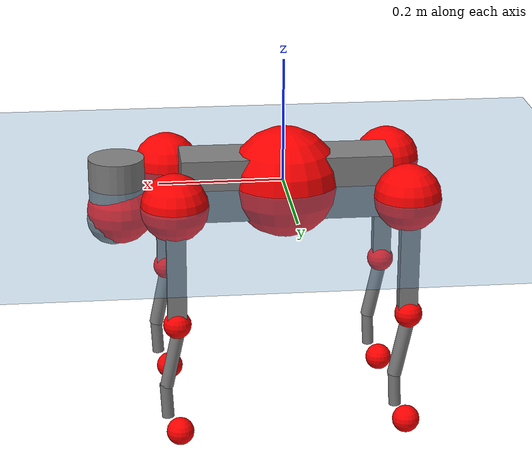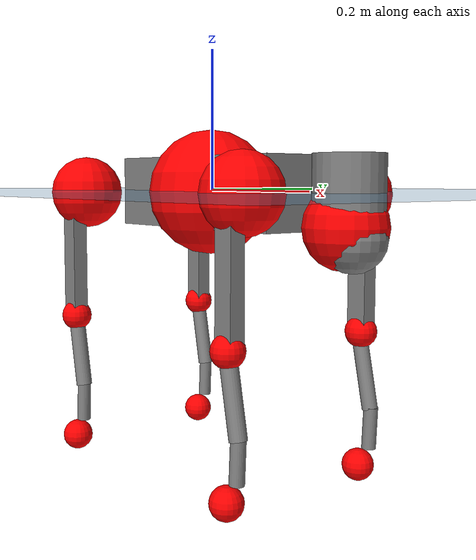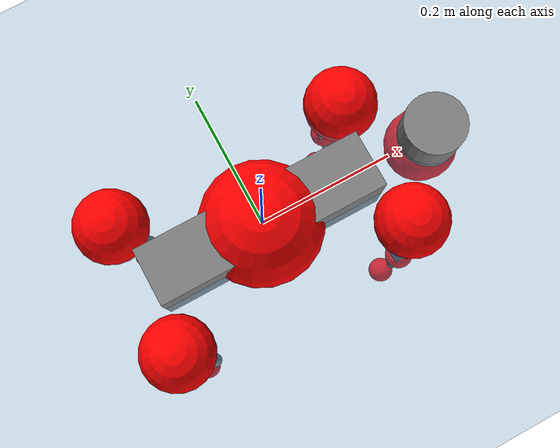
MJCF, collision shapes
<mujoco model="go2">
  <compiler angle="radian" assetdir="assets" balanceinertia="true" inertiafromgeom="false"/>

  <option timestep="0.005" density="1.2" viscosity="2e-05"/>

  <size nkey="1"/>

  <visual>
    <quality shadowsize="8192"/>
    <map shadowclip="0.5"/>
  </visual>

  <default>
    <default class="/">
      <geom contype="0" conaffinity="0" group="1" solref="-1000 -80"/>
      <site size="0.01 0.005 0.005" group="5"/>
      <general forcelimited="true" biastype="affine" gainprm="20" biasprm="0 -20 -0.5"/>
      <default class="go2">
        <joint armature="0.01" damping="0.01" frictionloss="0.2"/>
        <geom condim="1" margin="0.001"/>
        <default class="visual">
          <geom type="mesh" group="2"/>
        </default>
        <default class="collision">
          <geom group="3"/>
          <default class="foot">
            <geom size="0.022 0 0" condim="6" priority="1" friction="0.8 0.02 0.01" solimp="0.015 1 0.022"/>
          </default>
        </default>
        <default class="reward_collision_sphere">
          <geom group="5" rgba="1 0 0 1"/>
        </default>
      </default>
    </default>
  </default>

  <asset>
    <texture type="skybox" colorspace="auto" name="//unnamed_texture_0" builtin="gradient" rgb1="0.95 0.95 0.95" rgb2="0.95 0.95 0.95" width="100" height="600"/>
    <texture type="2d" colorspace="auto" name="texplane" builtin="checker" rgb1="0.345 0.575 0.748" rgb2="0.345 0.575 0.748" markrgb="1 1 1" width="512" height="512"/>
    <material name="MatPlane" class="/" texture="texplane" texuniform="true" texrepeat="2 2" specular="0.9"/>
    <material name="metal" class="/" rgba="0.9 0.95 0.95 1"/>
    <material name="black" class="/" rgba="0 0 0 1"/>
    <material name="white" class="/"/>
    <material name="gray" class="/" rgba="0.671705 0.692426 0.77427 1"/>
    <mesh name="base_0" class="/" file="base_0.obj"/>
    <mesh name="base_1" class="/" file="base_1.obj"/>
    <mesh name="base_2" class="/" file="base_2.obj"/>
    <mesh name="base_3" class="/" file="base_3.obj"/>
    <mesh name="base_4" class="/" file="base_4.obj"/>
    <mesh name="hip_0" class="/" file="hip_0.obj"/>
    <mesh name="hip_1" class="/" file="hip_1.obj"/>
    <mesh name="thigh_0" class="/" file="thigh_0.obj"/>
    <mesh name="thigh_1" class="/" file="thigh_1.obj"/>
    <mesh name="thigh_mirror_0" class="/" file="thigh_mirror_0.obj"/>
    <mesh name="thigh_mirror_1" class="/" file="thigh_mirror_1.obj"/>
    <mesh name="calf_0" class="/" file="calf_0.obj"/>
    <mesh name="calf_1" class="/" file="calf_1.obj"/>
    <mesh name="calf_mirror_0" class="/" file="calf_mirror_0.obj"/>
    <mesh name="calf_mirror_1" class="/" file="calf_mirror_1.obj"/>
    <mesh name="foot" class="/" file="foot.obj"/>
  </asset>

  <worldbody>
    <geom name="floor" class="/" size="100 100 0.125" type="plane" group="0" material="MatPlane"/>
    <light name="toplight_shadow" class="/" pos="0 0 5" dir="0.0990148 0.0990148 -0.990148" type="directional" ambient="0.04 0.04 0.04" diffuse="0.55 0.55 0.55" specular="0.12 0.12 0.12"/>
    <light name="toplight_fill" class="/" pos="0 0 5" dir="0.0990148 0.0990148 -0.990148" type="directional" castshadow="false" ambient="0.04 0.04 0.04" diffuse="0.3 0.3 0.3" specular="0.08 0.08 0.08"/>
    <body name="trunk" childclass="go2" pos="-0.00254294 -0.000194859 -0.00279004" quat="0.999999 -0.00106379 -0.00039189 0.000789351">
      <inertial pos="0.0170176 0.00240664 -0.00589024" quat="0.00328739 0.720015 -0.00087098 0.693951" mass="5.01466" diaginertia="0.0827274 0.0440312 0.0136601"/>
      <joint name="//unnamed_joint_0" type="free" armature="0" damping="0" frictionloss="0"/>
      <geom name="//unnamed_geom_1" class="visual" material="black" mesh="base_0"/>
      <geom name="//unnamed_geom_2" class="visual" material="black" mesh="base_1"/>
      <geom name="//unnamed_geom_3" class="visual" material="black" mesh="base_2"/>
      <geom name="//unnamed_geom_4" class="visual" material="white" mesh="base_3"/>
      <geom name="//unnamed_geom_5" class="visual" material="gray" mesh="base_4"/>
      <geom name="trunk_1" class="collision" size="0.168549 0.0418908 0.0510754" type="box"/>
      <geom name="trunk_2" class="collision" size="0.044803 0.0403227" pos="0.269914 0 0.00888683" type="cylinder"/>
      <geom name="trunk_3" class="collision" size="0.0421148" pos="0.27749 0 -0.053321"/>
      <geom name="//unnamed_geom_9" class="reward_collision_sphere" size="0.089606"/>
      <geom name="//unnamed_geom_10" class="reward_collision_sphere" size="0.0537636" pos="0.265179 0 -0.0399907"/>
      <site name="imu" pos="-0.0100727 0.00104841 0.0264622" size="0.0089606"/>
      <camera name="track" pos="0 -1.70486 0" quat="0.707107 0.707107 0 0" mode="trackcom"/>
      <camera name="ego_camera" pos="0.295485 0 0.0399907" quat="-0.5 -0.5 0.5 0.5"/>
      <body name="FL_hip" pos="0.182851 0.0395669 -0.00242359" quat="1 -0.000158457 7.51166e-06 -0.000130407">
        <inertial pos="-0.00792322 0.000906308 -0.00151071" quat="0.502847 0.489997 0.510851 0.496063" mass="0.492452" diaginertia="0.000681981 0.000273098 0.000278603"/>
        <joint name="FL_hip_joint" pos="0 0 0" axis="0.999962 0.0053297 0.00686445" stiffness="0.00160573" range="-1.0254 1.03729" armature="0.0100804" damping="0.00972348" frictionloss="0.179844"/>
        <geom name="//unnamed_geom_11" class="visual" material="metal" mesh="hip_0"/>
        <geom name="//unnamed_geom_12" class="visual" material="gray" mesh="hip_1"/>
        <geom name="//unnamed_geom_13" class="collision" size="0.0412188 0.0179212" pos="0 0.0681945 0" quat="0.707107 0.707107 0 0" type="cylinder"/>
        <geom name="//unnamed_geom_14" class="reward_collision_sphere" size="0.0537636" pos="0 0.0596702 0"/>
        <body name="FL_thigh" pos="0.000292475 0.0807983 -0.00185996" quat="1 0.000103362 -0.000313957 0.000195119">
          <inertial pos="-0.00345837 -0.0198733 -0.0288302" quat="0.829072 0.0915722 -0.0154427 0.551376" mass="0.815536" diaginertia="0.0044876 0.00250423 0.000483893"/>
          <joint name="FL_thigh_joint" pos="0 0 0" axis="0.0146677 0.999826 0.0114825" stiffness="0.0145683" range="-1.5597 3.48995" armature="0.00776019" damping="0.0108167" frictionloss="0.177879"/>
          <geom name="//unnamed_geom_15" class="visual" material="metal" mesh="thigh_0"/>
          <geom name="//unnamed_geom_16" class="visual" material="gray" mesh="thigh_1"/>
          <geom name="//unnamed_geom_17" class="collision" size="0.0954304 0.0109767 0.015233" pos="0 0 -0.0946447" quat="0.707107 0 0.707107 0" type="box"/>
          <body name="FL_calf" pos="-0.000145383 0.00051094 -0.18696" quat="1 0.00010177 -4.2153e-05 0.000168744">
            <inertial pos="0.00414086 -0.00326545 -0.122903" quat="0.709722 0.00229112 -0.00321367 0.70447" mass="0.174984" diaginertia="0.00116551 0.000646739 2.94074e-05"/>
            <joint name="FL_calf_joint" pos="0 0 0" axis="-0.00154876 0.999962 -0.00857195" stiffness="0.00759735" range="-2.67074 -0.868237" armature="0.00890692" damping="0.00771267" frictionloss="0.183469"/>
            <geom name="//unnamed_geom_18" class="visual" material="gray" mesh="calf_0"/>
            <geom name="//unnamed_geom_19" class="visual" material="black" mesh="calf_1"/>
            <geom name="FL_calf0" class="collision" size="0.0107527 0.0537636" pos="0.00757653 0 -0.053321" quat="0.994493 0 -0.104807 0" type="cylinder"/>
            <geom name="//unnamed_geom_21" class="collision" size="0.00985666 0.029122" pos="0.0189413 0 -0.131525" quat="0.999688 0 0.0249974 0" type="cylinder"/>
            <geom name="//unnamed_geom_22" class="visual" pos="0 0 -0.189289" quat="1 0 0 0" material="black" mesh="foot"/>
            <geom name="FL_foot" class="foot" size="0.020043" pos="-0.00189413 0 -0.189289"/>
            <geom name="//unnamed_geom_24" class="reward_collision_sphere" size="0.0224015"/>
            <geom name="//unnamed_geom_25" class="reward_collision_sphere" size="0.0224015" pos="-0.00189413 0 -0.189289"/>
            <site name="FL_foot" class="foot" pos="-0.00189413 0 -0.189289" size="0.0089606"/>
          </body>
        </body>
      </body>
      <body name="FR_hip" pos="0.186129 -0.0366106 0.000875298" quat="1 -0.00023527 5.71035e-06 0.000471203">
        <inertial pos="-0.00638457 -0.0041888 -0.00137639" quat="0.496058 0.509796 0.498056 0.495958" mass="0.489327" diaginertia="0.000655835 0.000279255 0.00026975"/>
        <joint name="FR_hip_joint" pos="0 0 0" axis="0.999999 0.000472917 0.00155543" range="-0.998972 1.02815" armature="0.00895336" damping="0.0160597" frictionloss="0.197709"/>
        <geom name="//unnamed_geom_26" class="visual" pos="0 -3.15805e-10 -1.35455e-08" quat="4.63268e-05 1 0 0" material="metal" mesh="hip_0"/>
        <geom name="//unnamed_geom_27" class="visual" pos="0 -5.11958e-10 3.35033e-08" quat="4.63268e-05 1 0 0" material="gray" mesh="hip_1"/>
        <geom name="//unnamed_geom_28" class="collision" size="0.0412188 0.0179212" pos="0 -0.0681945 0" quat="0.707107 0.707107 0 0" type="cylinder"/>
        <geom name="//unnamed_geom_29" class="reward_collision_sphere" size="0.0537636" pos="0 -0.0596702 0"/>
        <body name="FR_thigh" pos="0.00282505 -0.0814441 -0.00149975" quat="1 0.000517484 -0.00026349 0.000787511">
          <inertial pos="-0.00315273 0.0190098 -0.029677" quat="0.553153 -0.0199822 0.0854915 0.82844" mass="0.85652" diaginertia="0.00441822 0.00266178 0.000493129"/>
          <joint name="FR_thigh_joint" pos="0 0 0" axis="-0.00456008 -0.99999 3.3501e-05" range="-3.50656 1.61386" armature="0.00809908" damping="0.00996299" frictionloss="0.187849"/>
          <geom name="//unnamed_geom_30" class="visual" material="metal" mesh="thigh_mirror_0"/>
          <geom name="//unnamed_geom_31" class="visual" material="gray" mesh="thigh_mirror_1"/>
          <geom name="//unnamed_geom_32" class="collision" size="0.0954304 0.0109767 0.015233" pos="0 0 -0.0946447" quat="0.707107 0 0.707107 0" type="box"/>
          <body name="FR_calf" pos="-0.00083852 -0.0015378 -0.18813" quat="1 -9.64443e-05 0.000129412 3.81136e-05">
            <inertial pos="0.00658779 0.000266502 -0.126128" quat="0.69989 -0.00581634 -0.0116004 0.714133" mass="0.169694" diaginertia="0.00117772 0.000661883 2.91636e-05"/>
            <joint name="FR_calf_joint" pos="0 0 0" axis="0.0117233 -0.999923 -0.00401104" range="0.829812 2.66315" armature="0.0100715" damping="0.0144911" frictionloss="0.177534"/>
            <geom name="//unnamed_geom_33" class="visual" material="gray" mesh="calf_mirror_0"/>
            <geom name="//unnamed_geom_34" class="visual" material="black" mesh="calf_mirror_1"/>
            <geom name="FR_calf0" class="collision" size="0.0116488 0.0537636" pos="0.00947066 0 -0.053321" quat="0.995004 0 -0.0998334 0" type="cylinder"/>
            <geom name="//unnamed_geom_36" class="collision" size="0.00985666 0.029122" pos="0.0189413 0 -0.131525" quat="0.999688 0 0.0249974 0" type="cylinder"/>
            <geom name="//unnamed_geom_37" class="visual" pos="0 0 -0.189289" quat="1 0 0 0" material="black" mesh="foot"/>
            <geom name="FR_foot" class="foot" size="0.0189945" pos="-0.00189413 0 -0.189289"/>
            <geom name="//unnamed_geom_39" class="reward_collision_sphere" size="0.0224015"/>
            <geom name="//unnamed_geom_40" class="reward_collision_sphere" size="0.0224015" pos="-0.00189413 0 -0.189289"/>
            <site name="FR_foot" class="foot" pos="-0.00189413 0 -0.189289" size="0.0089606"/>
          </body>
        </body>
      </body>
      <body name="RL_hip" pos="-0.183911 0.0363363 0.00021525" quat="1 7.97771e-05 -0.000229159 -0.000113861">
        <inertial pos="0.00505811 0.00262629 -0.000216545" quat="0.506436 0.496944 0.496999 0.499561" mass="0.498111" diaginertia="0.000691735 0.000260889 0.000264556"/>
        <joint name="RL_hip_joint" pos="0 0 0" axis="-0.999998 -0.000245003 0.00196135" stiffness="0.00663163" range="-1.0447 1.07304" armature="0.00904806" damping="0" frictionloss="0.190659"/>
        <geom name="//unnamed_geom_41" class="visual" pos="-5.08612e-10 0 -9.96996e-08" quat="4.63268e-05 0 1 0" material="metal" mesh="hip_0"/>
        <geom name="//unnamed_geom_42" class="visual" pos="-8.2452e-10 0 -8.84193e-08" quat="4.63268e-05 0 1 0" material="gray" mesh="hip_1"/>
        <geom name="//unnamed_geom_43" class="collision" size="0.0412188 0.0179212" pos="0 0.0681945 0" quat="0.707107 0.707107 0 0" type="cylinder"/>
        <geom name="//unnamed_geom_44" class="reward_collision_sphere" size="0.0537636" pos="0 0.0596702 0"/>
        <body name="RL_thigh" pos="-0.00097341 0.0789222 0.00209723" quat="1 1.64531e-05 2.48325e-05 6.6041e-05">
          <inertial pos="-0.00504517 -0.0192314 -0.0289546" quat="0.828837 0.090452 -0.0164491 0.551885" mass="0.851229" diaginertia="0.00462873 0.00268614 0.000495192"/>
          <joint name="RL_thigh_joint" pos="0 0 0" axis="0.00662305 0.999942 0.00852781" range="-0.548365 4.52249" armature="0.00993686" damping="0.000194939" frictionloss="0.181477"/>
          <geom name="//unnamed_geom_45" class="visual" material="metal" mesh="thigh_0"/>
          <geom name="//unnamed_geom_46" class="visual" material="gray" mesh="thigh_1"/>
          <geom name="//unnamed_geom_47" class="collision" size="0.0954304 0.0109767 0.015233" pos="0 0 -0.0946447" quat="0.707107 0 0.707107 0" type="box"/>
          <body name="RL_calf" pos="-0.00223844 0.00169518 -0.192121" quat="1 0.000494902 0.000217262 2.61948e-05">
            <inertial pos="0.00864367 -0.00337262 -0.123018" quat="0.705622 0.00777902 -0.00914436 0.708486" mass="0.169431" diaginertia="0.00113518 0.00068301 2.88412e-05"/>
            <joint name="RL_calf_joint" pos="0 0 0" axis="-6.8089e-05 0.999985 0.00549795" stiffness="0.00305641" range="-2.68598 -0.834869" armature="0.00881767" damping="0.00105147" frictionloss="0.204485"/>
            <geom name="//unnamed_geom_48" class="visual" material="gray" mesh="calf_0"/>
            <geom name="//unnamed_geom_49" class="visual" material="black" mesh="calf_1"/>
            <geom name="RL_calf0" class="collision" size="0.0116488 0.0537636" pos="0.00947066 0 -0.053321" quat="0.995004 0 -0.0998334 0" type="cylinder"/>
            <geom name="//unnamed_geom_51" class="collision" size="0.00985666 0.029122" pos="0.0189413 0 -0.131525" quat="0.999688 0 0.0249974 0" type="cylinder"/>
            <geom name="//unnamed_geom_52" class="visual" pos="0 0 -0.189289" quat="1 0 0 0" material="black" mesh="foot"/>
            <geom name="RL_foot" class="foot" size="0.0203654" pos="-0.00189413 0 -0.189289"/>
            <geom name="//unnamed_geom_54" class="reward_collision_sphere" size="0.0224015"/>
            <geom name="//unnamed_geom_55" class="reward_collision_sphere" size="0.0224015" pos="-0.00189413 0 -0.189289"/>
            <site name="RL_foot" class="foot" pos="-0.00189413 0 -0.189289" size="0.0089606"/>
          </body>
        </body>
      </body>
      <body name="RR_hip" pos="-0.183101 -0.0420632 -0.00145201" quat="0.999999 0.00136993 -0.000289198 -2.41e-05">
        <inertial pos="0.00444254 -1.78388e-06 -0.00276728" quat="0.499607 0.497275 0.498414 0.504672" mass="0.502363" diaginertia="0.000670085 0.000265778 0.00026431"/>
        <joint name="RR_hip_joint" pos="0 0 0" axis="-0.999923 -0.00217272 -0.0122533" stiffness="0.000672741" range="-0.999197 1.00648" armature="0.00775982" damping="0.00604473" frictionloss="0.198896"/>
        <geom name="//unnamed_geom_56" class="visual" pos="5.05335e-10 -3.15805e-10 -8.6154e-08" quat="2.14617e-09 4.63268e-05 4.63268e-05 -1" material="metal" mesh="hip_0"/>
        <geom name="//unnamed_geom_57" class="visual" pos="8.32624e-10 -5.11958e-10 -1.21923e-07" quat="2.14617e-09 4.63268e-05 4.63268e-05 -1" material="gray" mesh="hip_1"/>
        <geom name="//unnamed_geom_58" class="collision" size="0.0412188 0.0179212" pos="0 -0.0681945 0" quat="0.707107 0.707107 0 0" type="cylinder"/>
        <geom name="//unnamed_geom_59" class="reward_collision_sphere" size="0.0537636" pos="0 -0.0596702 0"/>
        <body name="RR_thigh" pos="0.000639076 -0.0812896 0.000405546" quat="1 -0.000172807 -0.000229072 7.91462e-05">
          <inertial pos="-0.00614941 0.0216524 -0.0291768" quat="0.551554 -0.0204068 0.0848012 0.829566" mass="0.788139" diaginertia="0.0045698 0.00258965 0.000487295"/>
          <joint name="RR_thigh_joint" pos="0 0 0" axis="0.000329482 -0.999999 0.00165834" stiffness="0.0075151" range="-4.5536 0.549937" armature="0.00872671" damping="0.0170166" frictionloss="0.161955"/>
          <geom name="//unnamed_geom_60" class="visual" material="metal" mesh="thigh_mirror_0"/>
          <geom name="//unnamed_geom_61" class="visual" material="gray" mesh="thigh_mirror_1"/>
          <geom name="//unnamed_geom_62" class="collision" size="0.0954304 0.0109767 0.015233" pos="0 0 -0.0946447" quat="0.707107 0 0.707107 0" type="box"/>
          <body name="RR_calf" pos="0.000710863 0.000232892 -0.190013" quat="1 2.83926e-05 -2.96979e-05 -1.21823e-05">
            <inertial pos="0.00796964 0.000672115 -0.126295" quat="0.703645 -0.00428669 0.00151706 0.710537" mass="0.162836" diaginertia="0.00108654 0.000643707 2.81036e-05"/>
            <joint name="RR_calf_joint" pos="0 0 0" axis="0.0023889 -0.999994 -0.00268601" range="0.850317 2.78026" armature="0.00788159" damping="0.0161248" frictionloss="0.183343"/>
            <geom name="//unnamed_geom_63" class="visual" material="gray" mesh="calf_mirror_0"/>
            <geom name="//unnamed_geom_64" class="visual" material="black" mesh="calf_mirror_1"/>
            <geom name="RR_calf0" class="collision" size="0.0116488 0.0537636" pos="0.00947066 0 -0.053321" quat="0.995004 0 -0.0998334 0" type="cylinder"/>
            <geom name="//unnamed_geom_66" class="collision" size="0.00985666 0.029122" pos="0.0189413 0 -0.131525" quat="0.999688 0 0.0249974 0" type="cylinder"/>
            <geom name="//unnamed_geom_67" class="visual" pos="0 0 -0.189289" quat="1 0 0 0" material="black" mesh="foot"/>
            <geom name="RR_foot" class="foot" size="0.0172633" pos="-0.00189413 0 -0.189289"/>
            <geom name="//unnamed_geom_69" class="reward_collision_sphere" size="0.0224015"/>
            <geom name="//unnamed_geom_70" class="reward_collision_sphere" size="0.0224015" pos="-0.00189413 0 -0.189289"/>
            <site name="RR_foot" class="foot" pos="-0.00189413 0 -0.189289" size="0.0089606"/>
          </body>
        </body>
      </body>
    </body>
  </worldbody>

  <contact>
    <pair class="/" geom1="floor" geom2="FL_foot" name="//unnamed_contact_0"/>
    <pair class="/" geom1="floor" geom2="FR_foot" name="//unnamed_contact_1"/>
    <pair class="/" geom1="floor" geom2="RL_foot" name="//unnamed_contact_2"/>
    <pair class="/" geom1="floor" geom2="RR_foot" name="//unnamed_contact_3"/>
  </contact>

  <actuator>
    <general name="FL_hip" class="/" joint="FL_hip_joint" forcerange="-21.223 21.223" gainprm="17.2332" biasprm="0 -17.2332 -0.469056"/>
    <general name="FL_thigh" class="/" joint="FL_thigh_joint" forcerange="-22.5979 22.5979" gainprm="17.2332" biasprm="0 -17.2332 -0.469056"/>
    <general name="FL_calf" class="/" joint="FL_calf_joint" forcerange="-38.9132 38.9132" gainprm="17.2332" biasprm="0 -17.2332 -0.469056"/>
    <general name="FR_hip" class="/" joint="FR_hip_joint" forcerange="-20.5823 20.5823" gainprm="17.2332" biasprm="0 -17.2332 -0.469056"/>
    <general name="FR_thigh" class="/" joint="FR_thigh_joint" forcerange="-23.3969 23.3969" gainprm="17.2332" biasprm="0 -17.2332 -0.469056"/>
    <general name="FR_calf" class="/" joint="FR_calf_joint" forcerange="-38.9982 38.9982" gainprm="17.2332" biasprm="0 -17.2332 -0.469056"/>
    <general name="RL_hip" class="/" joint="RL_hip_joint" forcerange="-21.9078 21.9078" gainprm="17.2332" biasprm="0 -17.2332 -0.469056"/>
    <general name="RL_thigh" class="/" joint="RL_thigh_joint" forcerange="-23.4626 23.4626" gainprm="17.2332" biasprm="0 -17.2332 -0.469056"/>
    <general name="RL_calf" class="/" joint="RL_calf_joint" forcerange="-39.026 39.026" gainprm="17.2332" biasprm="0 -17.2332 -0.469056"/>
    <general name="RR_hip" class="/" joint="RR_hip_joint" forcerange="-22.0165 22.0165" gainprm="17.2332" biasprm="0 -17.2332 -0.469056"/>
    <general name="RR_thigh" class="/" joint="RR_thigh_joint" forcerange="-21.2615 21.2615" gainprm="17.2332" biasprm="0 -17.2332 -0.469056"/>
    <general name="RR_calf" class="/" joint="RR_calf_joint" forcerange="-37.4207 37.4207" gainprm="17.2332" biasprm="0 -17.2332 -0.469056"/>
  </actuator>

  <sensor>
    <gyro site="imu" name="imu_angular_velocity"/>
    <velocimeter site="imu" name="imu_linear_velocity"/>
    <framelinvel objtype="site" objname="FL_foot" name="FL_foot_global_linear_velocity"/>
    <framelinvel objtype="site" objname="FR_foot" name="FR_foot_global_linear_velocity"/>
    <framelinvel objtype="site" objname="RL_foot" name="RL_foot_global_linear_velocity"/>
    <framelinvel objtype="site" objname="RR_foot" name="RR_foot_global_linear_velocity"/>
  </sensor>

  <keyframe>
    <key name="home" qpos="0 0 0.325 1 0 0 0 0.1 0.8 -1.5 -0.1 -0.8 1.5 -0.1 0.8 -1.5 0.1 -0.8 1.5"/>
  </keyframe>
</mujoco>
